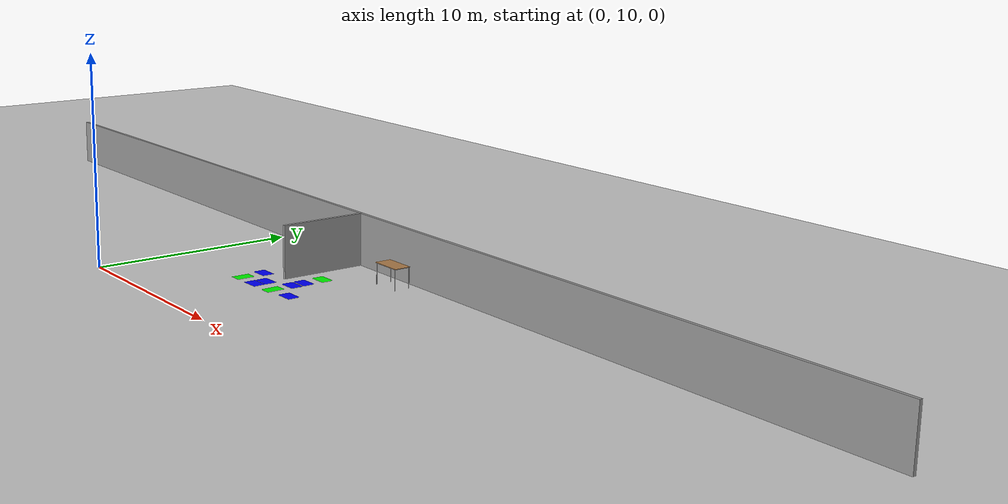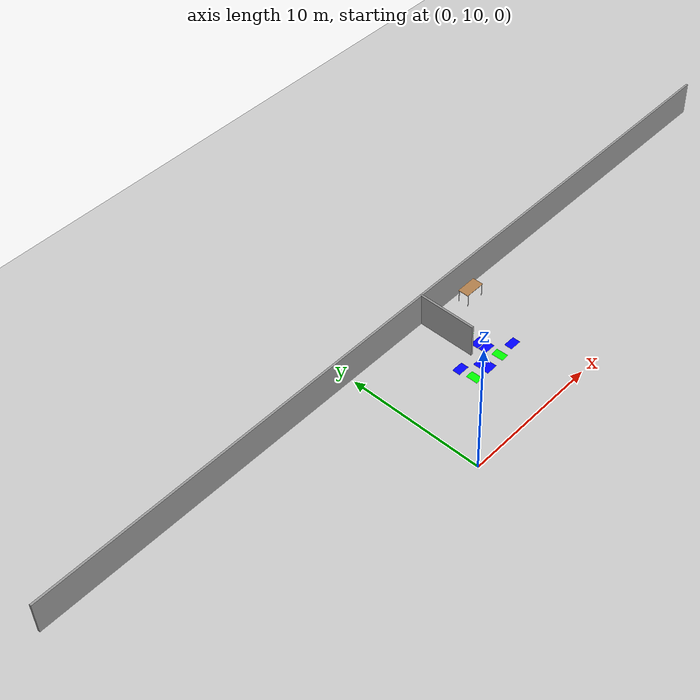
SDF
<sdf version="1.6">
 <world name="default">
  <model name="ground_plane">
   <pose>0 0 0.001 0 -0 0</pose>
   <static>1</static>
   <link name="link">
    <collision name="collision">
     <geometry><plane><normal>0 0 1</normal><size>100 100</size></plane></geometry>
     <surface><friction><ode><mu>100</mu><mu2>50</mu2></ode></friction></surface>
    </collision>
    <visual name="visual">
     <cast_shadows>0</cast_shadows>
     <geometry><plane><normal>0 0 1</normal><size>100 100</size></plane></geometry>
     <material>
      <script><uri>file://media/materials/scripts/gazebo.material</uri><name>Gazebo/Grey</name></script>
     </material>
    </visual>
   </link>
  </model>
  <model name="table_9">
   <static>1</static>
   <link name="link">
    <collision name="surface">
     <pose>0 0 1 0 -0 0</pose>
     <geometry><box><size>1.5 0.8 0.03</size></box></geometry>
     <surface><friction><ode><mu>0.6</mu><mu2>0.6</mu2></ode></friction></surface>
    </collision>
    <visual name="visual1">
     <pose>0 0 1 0 -0 0</pose>
     <geometry><box><size>1.5 0.8 0.03</size></box></geometry>
     <material>
      <script><uri>file://media/materials/scripts/gazebo.material</uri><name>Gazebo/Wood</name></script>
     </material>
    </visual>
    <collision name="front_left_leg">
     <pose>0.68 0.38 0.5 0 -0 0</pose>
     <geometry><cylinder><radius>0.02</radius><length>1</length></cylinder></geometry>
    </collision>
    <visual name="front_left_leg">
     <pose>0.68 0.38 0.5 0 -0 0</pose>
     <geometry><cylinder><radius>0.02</radius><length>1</length></cylinder></geometry>
     <material>
      <script><uri>file://media/materials/scripts/gazebo.material</uri><name>Gazebo/Grey</name></script>
     </material>
    </visual>
    <collision name="front_right_leg">
     <pose>0.68 -0.38 0.5 0 -0 0</pose>
     <geometry><cylinder><radius>0.02</radius><length>1</length></cylinder></geometry>
    </collision>
    <visual name="front_right_leg">
     <pose>0.68 -0.38 0.5 0 -0 0</pose>
     <geometry><cylinder><radius>0.02</radius><length>1</length></cylinder></geometry>
     <material>
      <script><uri>file://media/materials/scripts/gazebo.material</uri><name>Gazebo/Grey</name></script>
     </material>
    </visual>
    <collision name="back_right_leg">
     <pose>-0.68 -0.38 0.5 0 -0 0</pose>
     <geometry><cylinder><radius>0.02</radius><length>1</length></cylinder></geometry>
    </collision>
    <visual name="back_right_leg">
     <pose>-0.68 -0.38 0.5 0 -0 0</pose>
     <geometry><cylinder><radius>0.02</radius><length>1</length></cylinder></geometry>
     <material>
      <script><uri>file://media/materials/scripts/gazebo.material</uri><name>Gazebo/Grey</name></script>
     </material>
    </visual>
    <collision name="back_left_leg">
     <pose>-0.68 0.38 0.5 0 -0 0</pose>
     <geometry><cylinder><radius>0.02</radius><length>1</length></cylinder></geometry>
    </collision>
    <visual name="back_left_leg">
     <pose>-0.68 0.38 0.5 0 -0 0</pose>
     <geometry><cylinder><radius>0.02</radius><length>1</length></cylinder></geometry>
     <material>
      <script><uri>file://media/materials/scripts/gazebo.material</uri><name>Gazebo/Grey</name></script>
     </material>
    </visual>
   </link>
   <pose>10.3778 19.3786 0.001 0 -0 0</pose>
  </model>
  <model name="corridor_10">
   <link name="link">
    <pose>0 0 0.001 0 -0 0</pose>
    <inertial>
     <mass>0.0352517</mass>
     <inertia>
      <ixx>0.00099707</ixx>
      <ixy>0</ixy>
      <ixz>0</ixz>
      <iyy>0.00220147</iyy>
      <iyz>0</iyz>
      <izz>0.0031692</izz>
     </inertia>
     <pose>0 0 0.001 0 -0 0</pose>
    </inertial>
    <visual name="visual">
     <geometry><box><size>0.862743 0.578289 1e-06</size></box></geometry>
     <material>
      <script><name>Gazebo/Grey</name><uri>file://media/materials/scripts/gazebo.material</uri></script>
      <ambient>0 1 0 1</ambient>
      <diffuse>0 1 0 1</diffuse>
      <specular>0 1 0 1</specular>
      <emissive>0 1 0 1</emissive>
      <shader type="vertex"><normal_map>__default__</normal_map></shader>
     </material>
     <pose>0 0 0.001 0 -0 0</pose>
    </visual>
    <collision name="collision">
     <pose>0 0 0.001 0 -0 0</pose>
     <geometry><box><size>0.862743 0.578289 0.000477</size></box></geometry>
     <surface>
      <friction>
       <ode><mu>1</mu><mu2>1</mu2><fdir1>0 0 0</fdir1><slip1>0</slip1><slip2>0</slip2></ode>
       <torsional>
        <coefficient>1</coefficient>
        <patch_radius>0</patch_radius>
        <surface_radius>0</surface_radius>
        <use_patch_radius>1</use_patch_radius>
        <ode><slip>0</slip></ode>
       </torsional>
      </friction>
      <bounce><restitution_coefficient>0</restitution_coefficient><threshold>1e+06</threshold></bounce>
      <contact>
       <collide_without_contact>0</collide_without_contact>
       <collide_without_contact_bitmask>1</collide_without_contact_bitmask>
       <collide_bitmask>1</collide_bitmask>
       <ode>
        <soft_cfm>0</soft_cfm>
        <soft_erp>0.2</soft_erp>
        <kp>1e+13</kp>
        <kd>1</kd>
        <max_vel>0.01</max_vel>
        <min_depth>0</min_depth>
       </ode>
       <bullet>
        <split_impulse>1</split_impulse>
        <split_impulse_penetration_threshold>-0.01</split_impulse_penetration_threshold>
        <soft_cfm>0</soft_cfm>
        <soft_erp>0.2</soft_erp>
        <kp>1e+13</kp>
        <kd>1</kd>
       </bullet>
      </contact>
     </surface>
    </collision>
   </link>
   <static>1</static>
   <pose>7.76072 14.7316 0 0 0 -1.54161</pose>
  </model>
  <model name="corridor_11">
   <link name="link">
    <pose>0 0 0.001 0 -0 0</pose>
    <inertial>
     <mass>0.0352517</mass>
     <inertia>
      <ixx>0.00099707</ixx>
      <ixy>0</ixy>
      <ixz>0</ixz>
      <iyy>0.00220147</iyy>
      <iyz>0</iyz>
      <izz>0.0031692</izz>
     </inertia>
     <pose>0 0 0.001 0 -0 0</pose>
    </inertial>
    <visual name="visual">
     <geometry><box><size>0.862743 0.578289 1e-06</size></box></geometry>
     <material>
      <script><name>Gazebo/Grey</name><uri>file://media/materials/scripts/gazebo.material</uri></script>
      <ambient>0 1 0 1</ambient>
      <diffuse>0 1 0 1</diffuse>
      <specular>0 1 0 1</specular>
      <emissive>0 1 0 1</emissive>
      <shader type="vertex"><normal_map>__default__</normal_map></shader>
     </material>
     <pose>0 0 0.001 0 -0 0</pose>
    </visual>
    <collision name="collision">
     <pose>0 0 0.001 0 -0 0</pose>
     <geometry><box><size>0.862743 0.578289 0.000477</size></box></geometry>
     <surface>
      <friction>
       <ode><mu>1</mu><mu2>1</mu2><fdir1>0 0 0</fdir1><slip1>0</slip1><slip2>0</slip2></ode>
       <torsional>
        <coefficient>1</coefficient>
        <patch_radius>0</patch_radius>
        <surface_radius>0</surface_radius>
        <use_patch_radius>1</use_patch_radius>
        <ode><slip>0</slip></ode>
       </torsional>
      </friction>
      <bounce><restitution_coefficient>0</restitution_coefficient><threshold>1e+06</threshold></bounce>
      <contact>
       <collide_without_contact>0</collide_without_contact>
       <collide_without_contact_bitmask>1</collide_without_contact_bitmask>
       <collide_bitmask>1</collide_bitmask>
       <ode>
        <soft_cfm>0</soft_cfm>
        <soft_erp>0.2</soft_erp>
        <kp>1e+13</kp>
        <kd>1</kd>
        <max_vel>0.01</max_vel>
        <min_depth>0</min_depth>
       </ode>
       <bullet>
        <split_impulse>1</split_impulse>
        <split_impulse_penetration_threshold>-0.01</split_impulse_penetration_threshold>
        <soft_cfm>0</soft_cfm>
        <soft_erp>0.2</soft_erp>
        <kp>1e+13</kp>
        <kd>1</kd>
       </bullet>
      </contact>
     </surface>
    </collision>
   </link>
   <static>1</static>
   <pose>5.24255 14.6948 0 0 -0 1.57892</pose>
  </model>
  <model name="intersection_20">
   <link name="link">
    <pose>0 0 0.001 0 -0 0</pose>
    <inertial>
     <mass>0.0352517</mass>
     <inertia>
      <ixx>0.000997067</ixx>
      <ixy>0</ixy>
      <ixz>0</ixz>
      <iyy>0.00220147</iyy>
      <iyz>0</iyz>
      <izz>0.0031692</izz>
     </inertia>
     <pose>0 0 0.001 0 -0 0</pose>
    </inertial>
    <visual name="visual">
     <geometry><box><size>0.862743 0.578289 1e-06</size></box></geometry>
     <material>
      <script><name>Gazebo/Grey</name><uri>file://media/materials/scripts/gazebo.material</uri></script>
      <ambient>0 0 1 1</ambient>
      <diffuse>0 0 1 1</diffuse>
      <specular>0 0 1 1</specular>
      <emissive>0 0 1 1</emissive>
      <shader type="vertex"><normal_map>__default__</normal_map></shader>
     </material>
     <pose>0 0 0.001 0 -0 0</pose>
    </visual>
    <collision name="collision">
     <pose>0 0 0.001 0 -0 0</pose>
     <geometry><box><size>0.862743 0.578289 0.000477</size></box></geometry>
     <surface>
      <friction>
       <ode><mu>1</mu><mu2>1</mu2><fdir1>0 0 0</fdir1><slip1>0</slip1><slip2>0</slip2></ode>
       <torsional>
        <coefficient>1</coefficient>
        <patch_radius>0</patch_radius>
        <surface_radius>0</surface_radius>
        <use_patch_radius>1</use_patch_radius>
        <ode><slip>0</slip></ode>
       </torsional>
      </friction>
      <bounce><restitution_coefficient>0</restitution_coefficient><threshold>1e+06</threshold></bounce>
      <contact>
       <collide_without_contact>0</collide_without_contact>
       <collide_without_contact_bitmask>1</collide_without_contact_bitmask>
       <collide_bitmask>1</collide_bitmask>
       <ode>
        <soft_cfm>0</soft_cfm>
        <soft_erp>0.2</soft_erp>
        <kp>1e+13</kp>
        <kd>1</kd>
        <max_vel>0.01</max_vel>
        <min_depth>0</min_depth>
       </ode>
       <bullet>
        <split_impulse>1</split_impulse>
        <split_impulse_penetration_threshold>-0.01</split_impulse_penetration_threshold>
        <soft_cfm>0</soft_cfm>
        <soft_erp>0.2</soft_erp>
        <kp>1e+13</kp>
        <kd>1</kd>
       </bullet>
      </contact>
     </surface>
    </collision>
   </link>
   <static>1</static>
   <pose>7.71007 15.776 0 0 -0 0</pose>
  </model>
  <model name="intersection_22">
   <link name="link">
    <pose>0 0 0.001 0 -0 0</pose>
    <inertial>
     <mass>0.0352517</mass>
     <inertia>
      <ixx>0.000997067</ixx>
      <ixy>0</ixy>
      <ixz>0</ixz>
      <iyy>0.00220147</iyy>
      <iyz>0</iyz>
      <izz>0.0031692</izz>
     </inertia>
     <pose>0 0 0.001 0 -0 0</pose>
    </inertial>
    <visual name="visual">
     <geometry><box><size>0.862743 0.578289 1e-06</size></box></geometry>
     <material>
      <script><name>Gazebo/Grey</name><uri>file://media/materials/scripts/gazebo.material</uri></script>
      <ambient>0 0 1 1</ambient>
      <diffuse>0 0 1 1</diffuse>
      <specular>0 0 1 1</specular>
      <emissive>0 0 1 1</emissive>
      <shader type="vertex"><normal_map>__default__</normal_map></shader>
     </material>
     <pose>0 0 0.001 0 -0 0</pose>
    </visual>
    <collision name="collision">
     <pose>0 0 0.001 0 -0 0</pose>
     <geometry><box><size>0.862743 0.578289 0.000477</size></box></geometry>
     <surface>
      <friction>
       <ode><mu>1</mu><mu2>1</mu2><fdir1>0 0 0</fdir1><slip1>0</slip1><slip2>0</slip2></ode>
       <torsional>
        <coefficient>1</coefficient>
        <patch_radius>0</patch_radius>
        <surface_radius>0</surface_radius>
        <use_patch_radius>1</use_patch_radius>
        <ode><slip>0</slip></ode>
       </torsional>
      </friction>
      <bounce><restitution_coefficient>0</restitution_coefficient><threshold>1e+06</threshold></bounce>
      <contact>
       <collide_without_contact>0</collide_without_contact>
       <collide_without_contact_bitmask>1</collide_without_contact_bitmask>
       <collide_bitmask>1</collide_bitmask>
       <ode>
        <soft_cfm>0</soft_cfm>
        <soft_erp>0.2</soft_erp>
        <kp>1e+13</kp>
        <kd>1</kd>
        <max_vel>0.01</max_vel>
        <min_depth>0</min_depth>
       </ode>
       <bullet>
        <split_impulse>1</split_impulse>
        <split_impulse_penetration_threshold>-0.01</split_impulse_penetration_threshold>
        <soft_cfm>0</soft_cfm>
        <soft_erp>0.2</soft_erp>
        <kp>1e+13</kp>
        <kd>1</kd>
       </bullet>
      </contact>
     </surface>
    </collision>
   </link>
   <static>1</static>
   <pose>5.20823 15.8049 0 0 -0 0</pose>
  </model>
  <model name="intersection_50">
   <link name="link">
    <pose>0 0 0.001 0 -0 0</pose>
    <inertial>
     <mass>0.0352517</mass>
     <inertia>
      <ixx>0.000997067</ixx>
      <ixy>0</ixy>
      <ixz>0</ixz>
      <iyy>0.00220147</iyy>
      <iyz>0</iyz>
      <izz>0.0031692</izz>
     </inertia>
     <pose>0 0 0.001 0 -0 0</pose>
    </inertial>
    <visual name="visual">
     <geometry><box><size>0.862743 0.578289 1e-06</size></box></geometry>
     <material>
      <script><name>Gazebo/Grey</name><uri>file://media/materials/scripts/gazebo.material</uri></script>
      <ambient>0 0 1 1</ambient>
      <diffuse>0 0 1 1</diffuse>
      <specular>0 0 1 1</specular>
      <emissive>0 0 1 1</emissive>
      <shader type="vertex"><normal_map>__default__</normal_map></shader>
     </material>
     <pose>0 0 0.001 0 -0 0</pose>
    </visual>
    <collision name="collision">
     <pose>0 0 0.001 0 -0 0</pose>
     <geometry><box><size>0.862743 0.578289 0.000477</size></box></geometry>
     <surface>
      <friction>
       <ode><mu>1</mu><mu2>1</mu2><fdir1>0 0 0</fdir1><slip1>0</slip1><slip2>0</slip2></ode>
       <torsional>
        <coefficient>1</coefficient>
        <patch_radius>0</patch_radius>
        <surface_radius>0</surface_radius>
        <use_patch_radius>1</use_patch_radius>
        <ode><slip>0</slip></ode>
       </torsional>
      </friction>
      <bounce><restitution_coefficient>0</restitution_coefficient><threshold>1e+06</threshold></bounce>
      <contact>
       <collide_without_contact>0</collide_without_contact>
       <collide_without_contact_bitmask>1</collide_without_contact_bitmask>
       <collide_bitmask>1</collide_bitmask>
       <ode>
        <soft_cfm>0</soft_cfm>
        <soft_erp>0.2</soft_erp>
        <kp>1e+13</kp>
        <kd>1</kd>
        <max_vel>0.01</max_vel>
        <min_depth>0</min_depth>
       </ode>
       <bullet>
        <split_impulse>1</split_impulse>
        <split_impulse_penetration_threshold>-0.01</split_impulse_penetration_threshold>
        <soft_cfm>0</soft_cfm>
        <soft_erp>0.2</soft_erp>
        <kp>1e+13</kp>
        <kd>1</kd>
       </bullet>
      </contact>
     </surface>
    </collision>
   </link>
   <static>1</static>
   <pose>9.05513 14.7645 0.001956 0 -0 0</pose>
  </model>
  <model name="intersection_51">
   <link name="link">
    <pose>0 0 0.001 0 -0 0</pose>
    <inertial>
     <mass>0.0352517</mass>
     <inertia>
      <ixx>0.000997067</ixx>
      <ixy>0</ixy>
      <ixz>0</ixz>
      <iyy>0.00220147</iyy>
      <iyz>0</iyz>
      <izz>0.0031692</izz>
     </inertia>
     <pose>0 0 0.001 0 -0 0</pose>
    </inertial>
    <visual name="visual">
     <geometry><box><size>0.862743 0.578289 1e-06</size></box></geometry>
     <material>
      <script><name>Gazebo/Grey</name><uri>file://media/materials/scripts/gazebo.material</uri></script>
      <ambient>0 0 1 1</ambient>
      <diffuse>0 0 1 1</diffuse>
      <specular>0 0 1 1</specular>
      <emissive>0 0 1 1</emissive>
      <shader type="vertex"><normal_map>__default__</normal_map></shader>
     </material>
     <pose>0 0 0.001 0 -0 0</pose>
    </visual>
    <collision name="collision">
     <pose>0 0 0.001 0 -0 0</pose>
     <geometry><box><size>0.862743 0.578289 0.000477</size></box></geometry>
     <surface>
      <friction>
       <ode><mu>1</mu><mu2>1</mu2><fdir1>0 0 0</fdir1><slip1>0</slip1><slip2>0</slip2></ode>
       <torsional>
        <coefficient>1</coefficient>
        <patch_radius>0</patch_radius>
        <surface_radius>0</surface_radius>
        <use_patch_radius>1</use_patch_radius>
        <ode><slip>0</slip></ode>
       </torsional>
      </friction>
      <bounce><restitution_coefficient>0</restitution_coefficient><threshold>1e+06</threshold></bounce>
      <contact>
       <collide_without_contact>0</collide_without_contact>
       <collide_without_contact_bitmask>1</collide_without_contact_bitmask>
       <collide_bitmask>1</collide_bitmask>
       <ode>
        <soft_cfm>0</soft_cfm>
        <soft_erp>0.2</soft_erp>
        <kp>1e+13</kp>
        <kd>1</kd>
        <max_vel>0.01</max_vel>
        <min_depth>0</min_depth>
       </ode>
       <bullet>
        <split_impulse>1</split_impulse>
        <split_impulse_penetration_threshold>-0.01</split_impulse_penetration_threshold>
        <soft_cfm>0</soft_cfm>
        <soft_erp>0.2</soft_erp>
        <kp>1e+13</kp>
        <kd>1</kd>
       </bullet>
      </contact>
     </surface>
    </collision>
   </link>
   <static>1</static>
   <pose>6.4705 15.1638 0 0 -0 0.024873</pose>
  </model>
  <model name="Se1_cut">
   <pose>3.62364 13.9276 0 0 -0 0</pose>
   <link name="Wall_5">
    <collision name="Wall_5_Collision">
     <geometry><box><size>60.25 0.15 2.5</size></box></geometry>
     <pose>0 0 1.25 0 -0 0</pose>
    </collision>
    <visual name="Wall_5_Visual">
     <pose>0 0 1.25 0 -0 0</pose>
     <geometry><box><size>60.25 0.15 2.5</size></box></geometry>
     <material>
      <script><uri>file://media/materials/scripts/gazebo.material</uri><name>Gazebo/Grey</name></script>
      <ambient>1 1 1 1</ambient>
     </material>
    </visual>
    <pose>2.46862 6.375 0 0 -0 3.14159</pose>
   </link>
   <link name="Wall_59">
    <collision name="Wall_59_Collision">
     <geometry><box><size>4.25 0.15 2.5</size></box></geometry>
     <pose>0 0 1.25 0 -0 0</pose>
    </collision>
    <visual name="Wall_59_Visual">
     <pose>0 0 1.25 0 -0 0</pose>
     <geometry><box><size>4.25 0.15 2.5</size></box></geometry>
     <material>
      <script><uri>file://media/materials/scripts/gazebo.material</uri><name>Gazebo/Grey</name></script>
      <ambient>1 1 1 1</ambient>
     </material>
    </visual>
    <pose>2.96947 4.24479 0 0 0 -1.5708</pose>
   </link>
   <static>1</static>
  </model>
  <model name="intersection_65">
   <link name="link">
    <pose>0 0 0.001 0 -0 0</pose>
    <inertial>
     <mass>0.0352517</mass>
     <inertia>
      <ixx>0.000997067</ixx>
      <ixy>0</ixy>
      <ixz>0</ixz>
      <iyy>0.00220147</iyy>
      <iyz>0</iyz>
      <izz>0.0031692</izz>
     </inertia>
     <pose>0 0 0.001 0 -0 0</pose>
    </inertial>
    <visual name="visual">
     <geometry><box><size>0.862743 0.578289 1e-06</size></box></geometry>
     <material>
      <script><name>Gazebo/Grey</name><uri>file://media/materials/scripts/gazebo.material</uri></script>
      <ambient>0 0 1 1</ambient>
      <diffuse>0 0 1 1</diffuse>
      <specular>0 0 1 1</specular>
      <emissive>0 0 1 1</emissive>
      <shader type="vertex"><normal_map>__default__</normal_map></shader>
     </material>
     <pose>0 0 0.001 0 -0 0</pose>
    </visual>
    <collision name="collision">
     <pose>0 0 0.001 0 -0 0</pose>
     <geometry><box><size>0.862743 0.578289 0.000477</size></box></geometry>
     <surface>
      <friction>
       <ode><mu>1</mu><mu2>1</mu2><fdir1>0 0 0</fdir1><slip1>0</slip1><slip2>0</slip2></ode>
       <torsional>
        <coefficient>1</coefficient>
        <patch_radius>0</patch_radius>
        <surface_radius>0</surface_radius>
        <use_patch_radius>1</use_patch_radius>
        <ode><slip>0</slip></ode>
       </torsional>
      </friction>
      <bounce><restitution_coefficient>0</restitution_coefficient><threshold>1e+06</threshold></bounce>
      <contact>
       <collide_without_contact>0</collide_without_contact>
       <collide_without_contact_bitmask>1</collide_without_contact_bitmask>
       <collide_bitmask>1</collide_bitmask>
       <ode>
        <soft_cfm>0</soft_cfm>
        <soft_erp>0.2</soft_erp>
        <kp>1e+13</kp>
        <kd>1</kd>
        <max_vel>0.01</max_vel>
        <min_depth>0</min_depth>
       </ode>
       <bullet>
        <split_impulse>1</split_impulse>
        <split_impulse_penetration_threshold>-0.01</split_impulse_penetration_threshold>
        <soft_cfm>0</soft_cfm>
        <soft_erp>0.2</soft_erp>
        <kp>1e+13</kp>
        <kd>1</kd>
       </bullet>
      </contact>
     </surface>
    </collision>
   </link>
   <static>1</static>
   <pose>6.46942 14.5672 0 0 0 -3.11379</pose>
  </model>
  <model name="intersection_66">
   <link name="link">
    <pose>0 0 0.001 0 -0 0</pose>
    <inertial>
     <mass>0.0352517</mass>
     <inertia>
      <ixx>0.000997067</ixx>
      <ixy>0</ixy>
      <ixz>0</ixz>
      <iyy>0.00220147</iyy>
      <iyz>0</iyz>
      <izz>0.0031692</izz>
     </inertia>
     <pose>0 0 0.001 0 -0 0</pose>
    </inertial>
    <visual name="visual">
     <geometry><box><size>0.862743 0.578289 1e-06</size></box></geometry>
     <material>
      <script><name>Gazebo/Grey</name><uri>file://media/materials/scripts/gazebo.material</uri></script>
      <ambient>0 0 1 1</ambient>
      <diffuse>0 0 1 1</diffuse>
      <specular>0 0 1 1</specular>
      <emissive>0 0 1 1</emissive>
      <shader type="vertex"><normal_map>__default__</normal_map></shader>
     </material>
     <pose>0 0 0.001 0 -0 0</pose>
    </visual>
    <collision name="collision">
     <pose>0 0 0.001 0 -0 0</pose>
     <geometry><box><size>0.862743 0.578289 0.000477</size></box></geometry>
     <surface>
      <friction>
       <ode><mu>1</mu><mu2>1</mu2><fdir1>0 0 0</fdir1><slip1>0</slip1><slip2>0</slip2></ode>
       <torsional>
        <coefficient>1</coefficient>
        <patch_radius>0</patch_radius>
        <surface_radius>0</surface_radius>
        <use_patch_radius>1</use_patch_radius>
        <ode><slip>0</slip></ode>
       </torsional>
      </friction>
      <bounce><restitution_coefficient>0</restitution_coefficient><threshold>1e+06</threshold></bounce>
      <contact>
       <collide_without_contact>0</collide_without_contact>
       <collide_without_contact_bitmask>1</collide_without_contact_bitmask>
       <collide_bitmask>1</collide_bitmask>
       <ode>
        <soft_cfm>0</soft_cfm>
        <soft_erp>0.2</soft_erp>
        <kp>1e+13</kp>
        <kd>1</kd>
        <max_vel>0.01</max_vel>
        <min_depth>0</min_depth>
       </ode>
       <bullet>
        <split_impulse>1</split_impulse>
        <split_impulse_penetration_threshold>-0.01</split_impulse_penetration_threshold>
        <soft_cfm>0</soft_cfm>
        <soft_erp>0.2</soft_erp>
        <kp>1e+13</kp>
        <kd>1</kd>
       </bullet>
      </contact>
     </surface>
    </collision>
   </link>
   <static>1</static>
   <pose>7.68569 16.4143 0 0 -0 0</pose>
  </model>
  <model name="corridor_0_clone_10">
   <link name="link">
    <pose>0 0 0.001 0 -0 0</pose>
    <inertial>
     <mass>0.0352517</mass>
     <inertia>
      <ixx>0.00099707</ixx>
      <ixy>0</ixy>
      <ixz>0</ixz>
      <iyy>0.00220147</iyy>
      <iyz>0</iyz>
      <izz>0.0031692</izz>
     </inertia>
     <pose>0 0 0.001 0 -0 0</pose>
    </inertial>
    <visual name="visual">
     <geometry><box><size>0.862743 0.578289 1e-06</size></box></geometry>
     <material>
      <script><name>Gazebo/Grey</name><uri>file://media/materials/scripts/gazebo.material</uri></script>
      <ambient>0 1 0 1</ambient>
      <diffuse>0 1 0 1</diffuse>
      <specular>0 1 0 1</specular>
      <emissive>0 1 0 1</emissive>
      <shader type="vertex"><normal_map>__default__</normal_map></shader>
     </material>
     <pose>0 0 0.001 0 -0 0</pose>
    </visual>
    <collision name="collision">
     <pose>0 0 0.001 0 -0 0</pose>
     <geometry><box><size>0.862743 0.578289 0.000477</size></box></geometry>
     <surface>
      <friction>
       <ode><mu>1</mu><mu2>1</mu2><fdir1>0 0 0</fdir1><slip1>0</slip1><slip2>0</slip2></ode>
       <torsional>
        <coefficient>1</coefficient>
        <patch_radius>0</patch_radius>
        <surface_radius>0</surface_radius>
        <use_patch_radius>1</use_patch_radius>
        <ode><slip>0</slip></ode>
       </torsional>
      </friction>
      <bounce><restitution_coefficient>0</restitution_coefficient><threshold>1e+06</threshold></bounce>
      <contact>
       <collide_without_contact>0</collide_without_contact>
       <collide_without_contact_bitmask>1</collide_without_contact_bitmask>
       <collide_bitmask>1</collide_bitmask>
       <ode>
        <soft_cfm>0</soft_cfm>
        <soft_erp>0.2</soft_erp>
        <kp>1e+13</kp>
        <kd>1</kd>
        <max_vel>0.01</max_vel>
        <min_depth>0</min_depth>
       </ode>
       <bullet>
        <split_impulse>1</split_impulse>
        <split_impulse_penetration_threshold>-0.01</split_impulse_penetration_threshold>
        <soft_cfm>0</soft_cfm>
        <soft_erp>0.2</soft_erp>
        <kp>1e+13</kp>
        <kd>1</kd>
       </bullet>
      </contact>
     </surface>
    </collision>
   </link>
   <static>1</static>
   <pose>7.66589 17.4186 0 0 -0 0</pose>
  </model>
 </world>
</sdf>
